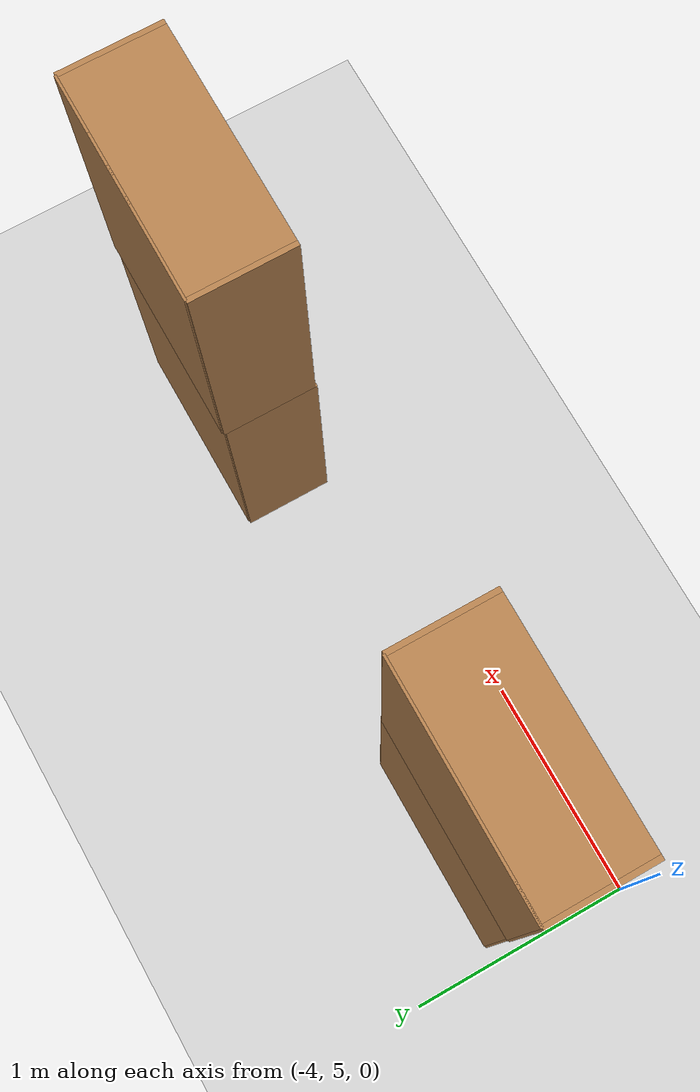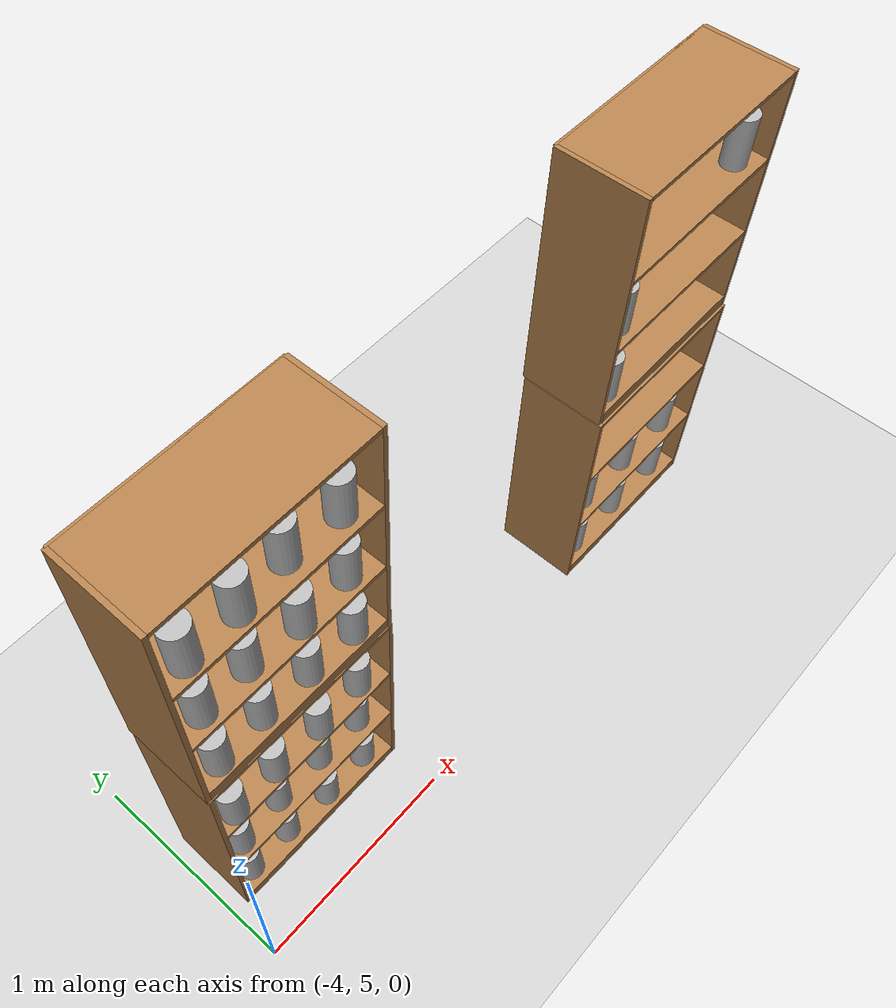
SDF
<sdf version="1.7">
 <world name="default">
  <model name="ground_plane">
   <static>1</static>
   <link name="link">
    <collision name="collision">
     <geometry><plane><normal>0 0 1</normal><size>100 100</size></plane></geometry>
     <surface><friction><ode><mu>100</mu><mu2>50</mu2></ode></friction></surface>
    </collision>
    <visual name="visual">
     <cast_shadows>0</cast_shadows>
     <geometry><plane><normal>0 0 1</normal><size>100 100</size></plane></geometry>
     <material>
      <script><uri>file://media/materials/scripts/gazebo.material</uri><name>Gazebo/Grey</name></script>
     </material>
    </visual>
   </link>
  </model>
  <model name="bookshelf_2_clone">
   <static>1</static>
   <link name="link">
    <inertial><mass>1</mass></inertial>
    <collision name="back">
     <pose>0 0.005 0.6 0 -0 0</pose>
     <geometry><box><size>0.9 0.01 1.2</size></box></geometry>
    </collision>
    <visual name="visual1">
     <pose>0 0.005 0.6 0 -0 0</pose>
     <geometry><box><size>0.9 0.01 1.2</size></box></geometry>
     <material>
      <script><uri>file://media/materials/scripts/gazebo.material</uri><name>Gazebo/Wood</name></script>
     </material>
    </visual>
    <collision name="left_side">
     <pose>0.45 -0.195 0.6 0 -0 0</pose>
     <geometry><box><size>0.02 0.4 1.2</size></box></geometry>
    </collision>
    <visual name="visual2">
     <pose>0.45 -0.195 0.6 0 -0 0</pose>
     <geometry><box><size>0.02 0.4 1.2</size></box></geometry>
     <material>
      <script><uri>file://media/materials/scripts/gazebo.material</uri><name>Gazebo/Wood</name></script>
     </material>
    </visual>
    <collision name="right_side">
     <pose>-0.45 -0.195 0.6 0 -0 0</pose>
     <geometry><box><size>0.02 0.4 1.2</size></box></geometry>
    </collision>
    <visual name="visual3">
     <pose>-0.45 -0.195 0.6 0 -0 0</pose>
     <geometry><box><size>0.02 0.4 1.2</size></box></geometry>
     <material>
      <script><uri>file://media/materials/scripts/gazebo.material</uri><name>Gazebo/Wood</name></script>
     </material>
    </visual>
    <collision name="bottom">
     <pose>0 -0.195 0.03 0 -0 0</pose>
     <geometry><box><size>0.88 0.4 0.06</size></box></geometry>
    </collision>
    <visual name="visual4">
     <pose>0 -0.195 0.03 0 -0 0</pose>
     <geometry><box><size>0.88 0.4 0.06</size></box></geometry>
     <material>
      <script><uri>file://media/materials/scripts/gazebo.material</uri><name>Gazebo/Wood</name></script>
     </material>
    </visual>
    <collision name="top">
     <pose>0 -0.195 1.19 0 -0 0</pose>
     <geometry><box><size>0.88 0.4 0.02</size></box></geometry>
    </collision>
    <visual name="visual5">
     <pose>0 -0.195 1.19 0 -0 0</pose>
     <geometry><box><size>0.88 0.4 0.02</size></box></geometry>
     <material>
      <script><uri>file://media/materials/scripts/gazebo.material</uri><name>Gazebo/Wood</name></script>
     </material>
    </visual>
    <collision name="low_shelf">
     <pose>0 -0.195 0.43 0 -0 0</pose>
     <geometry><box><size>0.88 0.4 0.02</size></box></geometry>
    </collision>
    <visual name="visual6">
     <pose>0 -0.195 0.43 0 -0 0</pose>
     <geometry><box><size>0.88 0.4 0.02</size></box></geometry>
     <material>
      <script><uri>file://media/materials/scripts/gazebo.material</uri><name>Gazebo/Wood</name></script>
     </material>
    </visual>
    <collision name="high_shelf">
     <pose>0 -0.195 0.8 0 -0 0</pose>
     <geometry><box><size>0.88 0.4 0.02</size></box></geometry>
    </collision>
    <visual name="visual7">
     <pose>0 -0.195 0.8 0 -0 0</pose>
     <geometry><box><size>0.88 0.4 0.02</size></box></geometry>
     <material>
      <script><uri>file://media/materials/scripts/gazebo.material</uri><name>Gazebo/Wood</name></script>
     </material>
    </visual>
   </link>
   <pose>-1.30264 5.59901 0 0 -0 0</pose>
  </model>
  <model name="bookshelf_2_clone_clone">
   <static>1</static>
   <link name="link">
    <inertial><mass>1</mass></inertial>
    <collision name="back">
     <pose>0 0.005 0.6 0 -0 0</pose>
     <geometry><box><size>0.9 0.01 1.2</size></box></geometry>
    </collision>
    <visual name="visual1">
     <pose>0 0.005 0.6 0 -0 0</pose>
     <geometry><box><size>0.9 0.01 1.2</size></box></geometry>
     <material>
      <script><uri>file://media/materials/scripts/gazebo.material</uri><name>Gazebo/Wood</name></script>
     </material>
    </visual>
    <collision name="left_side">
     <pose>0.45 -0.195 0.6 0 -0 0</pose>
     <geometry><box><size>0.02 0.4 1.2</size></box></geometry>
    </collision>
    <visual name="visual2">
     <pose>0.45 -0.195 0.6 0 -0 0</pose>
     <geometry><box><size>0.02 0.4 1.2</size></box></geometry>
     <material>
      <script><uri>file://media/materials/scripts/gazebo.material</uri><name>Gazebo/Wood</name></script>
     </material>
    </visual>
    <collision name="right_side">
     <pose>-0.45 -0.195 0.6 0 -0 0</pose>
     <geometry><box><size>0.02 0.4 1.2</size></box></geometry>
    </collision>
    <visual name="visual3">
     <pose>-0.45 -0.195 0.6 0 -0 0</pose>
     <geometry><box><size>0.02 0.4 1.2</size></box></geometry>
     <material>
      <script><uri>file://media/materials/scripts/gazebo.material</uri><name>Gazebo/Wood</name></script>
     </material>
    </visual>
    <collision name="bottom">
     <pose>0 -0.195 0.03 0 -0 0</pose>
     <geometry><box><size>0.88 0.4 0.06</size></box></geometry>
    </collision>
    <visual name="visual4">
     <pose>0 -0.195 0.03 0 -0 0</pose>
     <geometry><box><size>0.88 0.4 0.06</size></box></geometry>
     <material>
      <script><uri>file://media/materials/scripts/gazebo.material</uri><name>Gazebo/Wood</name></script>
     </material>
    </visual>
    <collision name="top">
     <pose>0 -0.195 1.19 0 -0 0</pose>
     <geometry><box><size>0.88 0.4 0.02</size></box></geometry>
    </collision>
    <visual name="visual5">
     <pose>0 -0.195 1.19 0 -0 0</pose>
     <geometry><box><size>0.88 0.4 0.02</size></box></geometry>
     <material>
      <script><uri>file://media/materials/scripts/gazebo.material</uri><name>Gazebo/Wood</name></script>
     </material>
    </visual>
    <collision name="low_shelf">
     <pose>0 -0.195 0.43 0 -0 0</pose>
     <geometry><box><size>0.88 0.4 0.02</size></box></geometry>
    </collision>
    <visual name="visual6">
     <pose>0 -0.195 0.43 0 -0 0</pose>
     <geometry><box><size>0.88 0.4 0.02</size></box></geometry>
     <material>
      <script><uri>file://media/materials/scripts/gazebo.material</uri><name>Gazebo/Wood</name></script>
     </material>
    </visual>
    <collision name="high_shelf">
     <pose>0 -0.195 0.8 0 -0 0</pose>
     <geometry><box><size>0.88 0.4 0.02</size></box></geometry>
    </collision>
    <visual name="visual7">
     <pose>0 -0.195 0.8 0 -0 0</pose>
     <geometry><box><size>0.88 0.4 0.02</size></box></geometry>
     <material>
      <script><uri>file://media/materials/scripts/gazebo.material</uri><name>Gazebo/Wood</name></script>
     </material>
    </visual>
   </link>
   <pose>-3.46853 5.62428 0 0 -0 0</pose>
  </model>
  <model name="bookshelf_3_clone">
   <static>1</static>
   <link name="link">
    <inertial><mass>1</mass></inertial>
    <collision name="back">
     <pose>0 0.005 0.6 0 -0 0</pose>
     <geometry><box><size>0.9 0.01 1.2</size></box></geometry>
    </collision>
    <visual name="visual1">
     <pose>0 0.005 0.6 0 -0 0</pose>
     <geometry><box><size>0.9 0.01 1.2</size></box></geometry>
     <material>
      <script><uri>file://media/materials/scripts/gazebo.material</uri><name>Gazebo/Wood</name></script>
     </material>
    </visual>
    <collision name="left_side">
     <pose>0.45 -0.195 0.6 0 -0 0</pose>
     <geometry><box><size>0.02 0.4 1.2</size></box></geometry>
    </collision>
    <visual name="visual2">
     <pose>0.45 -0.195 0.6 0 -0 0</pose>
     <geometry><box><size>0.02 0.4 1.2</size></box></geometry>
     <material>
      <script><uri>file://media/materials/scripts/gazebo.material</uri><name>Gazebo/Wood</name></script>
     </material>
    </visual>
    <collision name="right_side">
     <pose>-0.45 -0.195 0.6 0 -0 0</pose>
     <geometry><box><size>0.02 0.4 1.2</size></box></geometry>
    </collision>
    <visual name="visual3">
     <pose>-0.45 -0.195 0.6 0 -0 0</pose>
     <geometry><box><size>0.02 0.4 1.2</size></box></geometry>
     <material>
      <script><uri>file://media/materials/scripts/gazebo.material</uri><name>Gazebo/Wood</name></script>
     </material>
    </visual>
    <collision name="bottom">
     <pose>0 -0.195 0.03 0 -0 0</pose>
     <geometry><box><size>0.88 0.4 0.06</size></box></geometry>
    </collision>
    <visual name="visual4">
     <pose>0 -0.195 0.03 0 -0 0</pose>
     <geometry><box><size>0.88 0.4 0.06</size></box></geometry>
     <material>
      <script><uri>file://media/materials/scripts/gazebo.material</uri><name>Gazebo/Wood</name></script>
     </material>
    </visual>
    <collision name="top">
     <pose>0 -0.195 1.19 0 -0 0</pose>
     <geometry><box><size>0.88 0.4 0.02</size></box></geometry>
    </collision>
    <visual name="visual5">
     <pose>0 -0.195 1.19 0 -0 0</pose>
     <geometry><box><size>0.88 0.4 0.02</size></box></geometry>
     <material>
      <script><uri>file://media/materials/scripts/gazebo.material</uri><name>Gazebo/Wood</name></script>
     </material>
    </visual>
    <collision name="low_shelf">
     <pose>0 -0.195 0.43 0 -0 0</pose>
     <geometry><box><size>0.88 0.4 0.02</size></box></geometry>
    </collision>
    <visual name="visual6">
     <pose>0 -0.195 0.43 0 -0 0</pose>
     <geometry><box><size>0.88 0.4 0.02</size></box></geometry>
     <material>
      <script><uri>file://media/materials/scripts/gazebo.material</uri><name>Gazebo/Wood</name></script>
     </material>
    </visual>
    <collision name="high_shelf">
     <pose>0 -0.195 0.8 0 -0 0</pose>
     <geometry><box><size>0.88 0.4 0.02</size></box></geometry>
    </collision>
    <visual name="visual7">
     <pose>0 -0.195 0.8 0 -0 0</pose>
     <geometry><box><size>0.88 0.4 0.02</size></box></geometry>
     <material>
      <script><uri>file://media/materials/scripts/gazebo.material</uri><name>Gazebo/Wood</name></script>
     </material>
    </visual>
   </link>
   <pose>-1.30336 5.6079 1.20481 0 -0 0</pose>
  </model>
  <model name="bookshelf_3_clone_clone">
   <static>1</static>
   <link name="link">
    <inertial><mass>1</mass></inertial>
    <collision name="back">
     <pose>0 0.005 0.6 0 -0 0</pose>
     <geometry><box><size>0.9 0.01 1.2</size></box></geometry>
    </collision>
    <visual name="visual1">
     <pose>0 0.005 0.6 0 -0 0</pose>
     <geometry><box><size>0.9 0.01 1.2</size></box></geometry>
     <material>
      <script><uri>file://media/materials/scripts/gazebo.material</uri><name>Gazebo/Wood</name></script>
     </material>
    </visual>
    <collision name="left_side">
     <pose>0.45 -0.195 0.6 0 -0 0</pose>
     <geometry><box><size>0.02 0.4 1.2</size></box></geometry>
    </collision>
    <visual name="visual2">
     <pose>0.45 -0.195 0.6 0 -0 0</pose>
     <geometry><box><size>0.02 0.4 1.2</size></box></geometry>
     <material>
      <script><uri>file://media/materials/scripts/gazebo.material</uri><name>Gazebo/Wood</name></script>
     </material>
    </visual>
    <collision name="right_side">
     <pose>-0.45 -0.195 0.6 0 -0 0</pose>
     <geometry><box><size>0.02 0.4 1.2</size></box></geometry>
    </collision>
    <visual name="visual3">
     <pose>-0.45 -0.195 0.6 0 -0 0</pose>
     <geometry><box><size>0.02 0.4 1.2</size></box></geometry>
     <material>
      <script><uri>file://media/materials/scripts/gazebo.material</uri><name>Gazebo/Wood</name></script>
     </material>
    </visual>
    <collision name="bottom">
     <pose>0 -0.195 0.03 0 -0 0</pose>
     <geometry><box><size>0.88 0.4 0.06</size></box></geometry>
    </collision>
    <visual name="visual4">
     <pose>0 -0.195 0.03 0 -0 0</pose>
     <geometry><box><size>0.88 0.4 0.06</size></box></geometry>
     <material>
      <script><uri>file://media/materials/scripts/gazebo.material</uri><name>Gazebo/Wood</name></script>
     </material>
    </visual>
    <collision name="top">
     <pose>0 -0.195 1.19 0 -0 0</pose>
     <geometry><box><size>0.88 0.4 0.02</size></box></geometry>
    </collision>
    <visual name="visual5">
     <pose>0 -0.195 1.19 0 -0 0</pose>
     <geometry><box><size>0.88 0.4 0.02</size></box></geometry>
     <material>
      <script><uri>file://media/materials/scripts/gazebo.material</uri><name>Gazebo/Wood</name></script>
     </material>
    </visual>
    <collision name="low_shelf">
     <pose>0 -0.195 0.43 0 -0 0</pose>
     <geometry><box><size>0.88 0.4 0.02</size></box></geometry>
    </collision>
    <visual name="visual6">
     <pose>0 -0.195 0.43 0 -0 0</pose>
     <geometry><box><size>0.88 0.4 0.02</size></box></geometry>
     <material>
      <script><uri>file://media/materials/scripts/gazebo.material</uri><name>Gazebo/Wood</name></script>
     </material>
    </visual>
    <collision name="high_shelf">
     <pose>0 -0.195 0.8 0 -0 0</pose>
     <geometry><box><size>0.88 0.4 0.02</size></box></geometry>
    </collision>
    <visual name="visual7">
     <pose>0 -0.195 0.8 0 -0 0</pose>
     <geometry><box><size>0.88 0.4 0.02</size></box></geometry>
     <material>
      <script><uri>file://media/materials/scripts/gazebo.material</uri><name>Gazebo/Wood</name></script>
     </material>
    </visual>
   </link>
   <pose>-3.47373 5.62521 1.20481 0 -0 0</pose>
  </model>
  <model name="beer">
   <link name="link">
    <pose>0 0 0.115 0 -0 0</pose>
    <inertial>
     <mass>0.39</mass>
     <inertia><ixx>0.00058</ixx><ixy>0</ixy><ixz>0</ixz><iyy>0.00058</iyy><iyz>0</iyz><izz>0.00019</izz></inertia>
    </inertial>
    <collision name="collision">
     <geometry><cylinder><radius>0.055</radius><length>0.23</length></cylinder></geometry>
    </collision>
    <visual name="visual">
     <geometry><cylinder><radius>0.055</radius><length>0.23</length></cylinder></geometry>
     <material>
      <script>
       <uri>model://beer/materials/scripts</uri>
       <uri>model://beer/materials/textures</uri>
       <name>Beer/Diffuse</name>
      </script>
     </material>
    </visual>
   </link>
   <pose>-3.82313 5.3078 0.05999 1e-06 -2.7e-05 0.024904</pose>
  </model>
  <model name="beer_0">
   <link name="link">
    <pose>0 0 0.115 0 -0 0</pose>
    <inertial>
     <mass>0.39</mass>
     <inertia><ixx>0.00058</ixx><ixy>0</ixy><ixz>0</ixz><iyy>0.00058</iyy><iyz>0</iyz><izz>0.00019</izz></inertia>
    </inertial>
    <collision name="collision">
     <geometry><cylinder><radius>0.055</radius><length>0.23</length></cylinder></geometry>
    </collision>
    <visual name="visual">
     <geometry><cylinder><radius>0.055</radius><length>0.23</length></cylinder></geometry>
     <material>
      <script>
       <uri>model://beer/materials/scripts</uri>
       <uri>model://beer/materials/textures</uri>
       <name>Beer/Diffuse</name>
      </script>
     </material>
    </visual>
   </link>
   <pose>-3.60607 5.31032 0.059992 -1e-06 2.7e-05 0.046246</pose>
  </model>
  <model name="beer_1">
   <link name="link">
    <pose>0 0 0.115 0 -0 0</pose>
    <inertial>
     <mass>0.39</mass>
     <inertia><ixx>0.00058</ixx><ixy>0</ixy><ixz>0</ixz><iyy>0.00058</iyy><iyz>0</iyz><izz>0.00019</izz></inertia>
    </inertial>
    <collision name="collision">
     <geometry><cylinder><radius>0.055</radius><length>0.23</length></cylinder></geometry>
    </collision>
    <visual name="visual">
     <geometry><cylinder><radius>0.055</radius><length>0.23</length></cylinder></geometry>
     <material>
      <script>
       <uri>model://beer/materials/scripts</uri>
       <uri>model://beer/materials/textures</uri>
       <name>Beer/Diffuse</name>
      </script>
     </material>
    </visual>
   </link>
   <pose>-3.37516 5.2992 0.05999 -1e-06 2.6e-05 0.020777</pose>
  </model>
  <model name="beer_2">
   <link name="link">
    <pose>0 0 0.115 0 -0 0</pose>
    <inertial>
     <mass>0.39</mass>
     <inertia><ixx>0.00058</ixx><ixy>0</ixy><ixz>0</ixz><iyy>0.00058</iyy><iyz>0</iyz><izz>0.00019</izz></inertia>
    </inertial>
    <collision name="collision">
     <geometry><cylinder><radius>0.055</radius><length>0.23</length></cylinder></geometry>
    </collision>
    <visual name="visual">
     <geometry><cylinder><radius>0.055</radius><length>0.23</length></cylinder></geometry>
     <material>
      <script>
       <uri>model://beer/materials/scripts</uri>
       <uri>model://beer/materials/textures</uri>
       <name>Beer/Diffuse</name>
      </script>
     </material>
    </visual>
   </link>
   <pose>-3.14441 5.30303 0.059989 -2.1e-05 -1e-06 0.004999</pose>
  </model>
  <model name="beer_3_clone">
   <link name="link">
    <pose>0 0 0.115 0 -0 0</pose>
    <inertial>
     <mass>0.39</mass>
     <inertia><ixx>0.00058</ixx><ixy>0</ixy><ixz>0</ixz><iyy>0.00058</iyy><iyz>0</iyz><izz>0.00019</izz></inertia>
    </inertial>
    <collision name="collision">
     <geometry><cylinder><radius>0.055</radius><length>0.23</length></cylinder></geometry>
    </collision>
    <visual name="visual">
     <geometry><cylinder><radius>0.055</radius><length>0.23</length></cylinder></geometry>
     <material>
      <script>
       <uri>model://beer/materials/scripts</uri>
       <uri>model://beer/materials/textures</uri>
       <name>Beer/Diffuse</name>
      </script>
     </material>
    </visual>
   </link>
   <pose>-3.60909 5.31388 0.439992 2.6e-05 2.2e-05 0.038692</pose>
  </model>
  <model name="beer_3_clone_0">
   <link name="link">
    <pose>0 0 0.115 0 -0 0</pose>
    <inertial>
     <mass>0.39</mass>
     <inertia><ixx>0.00058</ixx><ixy>0</ixy><ixz>0</ixz><iyy>0.00058</iyy><iyz>0</iyz><izz>0.00019</izz></inertia>
    </inertial>
    <collision name="collision">
     <geometry><cylinder><radius>0.055</radius><length>0.23</length></cylinder></geometry>
    </collision>
    <visual name="visual">
     <geometry><cylinder><radius>0.055</radius><length>0.23</length></cylinder></geometry>
     <material>
      <script>
       <uri>model://beer/materials/scripts</uri>
       <uri>model://beer/materials/textures</uri>
       <name>Beer/Diffuse</name>
      </script>
     </material>
    </visual>
   </link>
   <pose>-3.37384 5.31586 0.439992 2.4e-05 1.4e-05 0.022599</pose>
  </model>
  <model name="beer_3_clone_1">
   <link name="link">
    <pose>0 0 0.115 0 -0 0</pose>
    <inertial>
     <mass>0.39</mass>
     <inertia><ixx>0.00058</ixx><ixy>0</ixy><ixz>0</ixz><iyy>0.00058</iyy><iyz>0</iyz><izz>0.00019</izz></inertia>
    </inertial>
    <collision name="collision">
     <geometry><cylinder><radius>0.055</radius><length>0.23</length></cylinder></geometry>
    </collision>
    <visual name="visual">
     <geometry><cylinder><radius>0.055</radius><length>0.23</length></cylinder></geometry>
     <material>
      <script>
       <uri>model://beer/materials/scripts</uri>
       <uri>model://beer/materials/textures</uri>
       <name>Beer/Diffuse</name>
      </script>
     </material>
    </visual>
   </link>
   <pose>-3.14994 5.31582 0.440001 1.7e-05 -1.5e-05 0.008951</pose>
  </model>
  <model name="beer_1_clone">
   <link name="link">
    <pose>0 0 0.115 0 -0 0</pose>
    <inertial>
     <mass>0.39</mass>
     <inertia><ixx>0.00058</ixx><ixy>0</ixy><ixz>0</ixz><iyy>0.00058</iyy><iyz>0</iyz><izz>0.00019</izz></inertia>
    </inertial>
    <collision name="collision">
     <geometry><cylinder><radius>0.055</radius><length>0.23</length></cylinder></geometry>
    </collision>
    <visual name="visual">
     <geometry><cylinder><radius>0.055</radius><length>0.23</length></cylinder></geometry>
     <material>
      <script>
       <uri>model://beer/materials/scripts</uri>
       <uri>model://beer/materials/textures</uri>
       <name>Beer/Diffuse</name>
      </script>
     </material>
    </visual>
   </link>
   <pose>-1.63126 5.28748 0.05999 -1e-06 2.6e-05 0.018521</pose>
  </model>
  <model name="beer_1_clone_0">
   <link name="link">
    <pose>0 0 0.115 0 -0 0</pose>
    <inertial>
     <mass>0.39</mass>
     <inertia><ixx>0.00058</ixx><ixy>0</ixy><ixz>0</ixz><iyy>0.00058</iyy><iyz>0</iyz><izz>0.00019</izz></inertia>
    </inertial>
    <collision name="collision">
     <geometry><cylinder><radius>0.055</radius><length>0.23</length></cylinder></geometry>
    </collision>
    <visual name="visual">
     <geometry><cylinder><radius>0.055</radius><length>0.23</length></cylinder></geometry>
     <material>
      <script>
       <uri>model://beer/materials/scripts</uri>
       <uri>model://beer/materials/textures</uri>
       <name>Beer/Diffuse</name>
      </script>
     </material>
    </visual>
   </link>
   <pose>-1.3203 5.28927 0.059989 3e-06 -2.8e-05 0.020494</pose>
  </model>
  <model name="beer_1_clone_1">
   <link name="link">
    <pose>0 0 0.115 0 -0 0</pose>
    <inertial>
     <mass>0.39</mass>
     <inertia><ixx>0.00058</ixx><ixy>0</ixy><ixz>0</ixz><iyy>0.00058</iyy><iyz>0</iyz><izz>0.00019</izz></inertia>
    </inertial>
    <collision name="collision">
     <geometry><cylinder><radius>0.055</radius><length>0.23</length></cylinder></geometry>
    </collision>
    <visual name="visual">
     <geometry><cylinder><radius>0.055</radius><length>0.23</length></cylinder></geometry>
     <material>
      <script>
       <uri>model://beer/materials/scripts</uri>
       <uri>model://beer/materials/textures</uri>
       <name>Beer/Diffuse</name>
      </script>
     </material>
    </visual>
   </link>
   <pose>-0.999917 5.28641 0.060002 2.3e-05 1.5e-05 0.00783</pose>
  </model>
  <model name="beer_3_clone_1_clone">
   <link name="link">
    <pose>0 0 0.115 0 -0 0</pose>
    <inertial>
     <mass>0.39</mass>
     <inertia><ixx>0.00058</ixx><ixy>0</ixy><ixz>0</ixz><iyy>0.00058</iyy><iyz>0</iyz><izz>0.00019</izz></inertia>
    </inertial>
    <collision name="collision">
     <geometry><cylinder><radius>0.055</radius><length>0.23</length></cylinder></geometry>
    </collision>
    <visual name="visual">
     <geometry><cylinder><radius>0.055</radius><length>0.23</length></cylinder></geometry>
     <material>
      <script>
       <uri>model://beer/materials/scripts</uri>
       <uri>model://beer/materials/textures</uri>
       <name>Beer/Diffuse</name>
      </script>
     </material>
    </visual>
   </link>
   <pose>-1.6251 5.29266 0.43999 -1e-06 2.6e-05 0.019975</pose>
  </model>
  <model name="beer_3_clone_1_clone_0">
   <link name="link">
    <pose>0 0 0.115 0 -0 0</pose>
    <inertial>
     <mass>0.39</mass>
     <inertia><ixx>0.00058</ixx><ixy>0</ixy><ixz>0</ixz><iyy>0.00058</iyy><iyz>0</iyz><izz>0.00019</izz></inertia>
    </inertial>
    <collision name="collision">
     <geometry><cylinder><radius>0.055</radius><length>0.23</length></cylinder></geometry>
    </collision>
    <visual name="visual">
     <geometry><cylinder><radius>0.055</radius><length>0.23</length></cylinder></geometry>
     <material>
      <script>
       <uri>model://beer/materials/scripts</uri>
       <uri>model://beer/materials/textures</uri>
       <name>Beer/Diffuse</name>
      </script>
     </material>
    </visual>
   </link>
   <pose>-1.32664 5.29025 0.43999 -1e-06 2.6e-05 0.024543</pose>
  </model>
  <model name="beer_3_clone_1_clone_1">
   <link name="link">
    <pose>0 0 0.115 0 -0 0</pose>
    <inertial>
     <mass>0.39</mass>
     <inertia><ixx>0.00058</ixx><ixy>0</ixy><ixz>0</ixz><iyy>0.00058</iyy><iyz>0</iyz><izz>0.00019</izz></inertia>
    </inertial>
    <collision name="collision">
     <geometry><cylinder><radius>0.055</radius><length>0.23</length></cylinder></geometry>
    </collision>
    <visual name="visual">
     <geometry><cylinder><radius>0.055</radius><length>0.23</length></cylinder></geometry>
     <material>
      <script>
       <uri>model://beer/materials/scripts</uri>
       <uri>model://beer/materials/textures</uri>
       <name>Beer/Diffuse</name>
      </script>
     </material>
    </visual>
   </link>
   <pose>-1.01331 5.28781 0.440001 1.8e-05 -1.4e-05 0.001542</pose>
  </model>
  <model name="beer_3_clone_clone_0">
   <link name="link">
    <pose>0 0 0.115 0 -0 0</pose>
    <inertial>
     <mass>0.39</mass>
     <inertia><ixx>0.00058</ixx><ixy>0</ixy><ixz>0</ixz><iyy>0.00058</iyy><iyz>0</iyz><izz>0.00019</izz></inertia>
    </inertial>
    <collision name="collision">
     <geometry><cylinder><radius>0.055</radius><length>0.23</length></cylinder></geometry>
    </collision>
    <visual name="visual">
     <geometry><cylinder><radius>0.055</radius><length>0.23</length></cylinder></geometry>
     <material>
      <script>
       <uri>model://beer/materials/scripts</uri>
       <uri>model://beer/materials/textures</uri>
       <name>Beer/Diffuse</name>
      </script>
     </material>
    </visual>
   </link>
   <pose>-3.83051 5.29896 0.439991 4e-06 1.4e-05 0.034563</pose>
  </model>
  <model name="beer_3_clone_clone_clone">
   <link name="link">
    <pose>0 0 0.115 0 -0 0</pose>
    <inertial>
     <mass>0.39</mass>
     <inertia><ixx>0.00058</ixx><ixy>0</ixy><ixz>0</ixz><iyy>0.00058</iyy><iyz>0</iyz><izz>0.00019</izz></inertia>
    </inertial>
    <collision name="collision">
     <geometry><cylinder><radius>0.055</radius><length>0.23</length></cylinder></geometry>
    </collision>
    <visual name="visual">
     <geometry><cylinder><radius>0.055</radius><length>0.23</length></cylinder></geometry>
     <material>
      <script>
       <uri>model://beer/materials/scripts</uri>
       <uri>model://beer/materials/textures</uri>
       <name>Beer/Diffuse</name>
      </script>
     </material>
    </visual>
   </link>
   <pose>-3.60909 5.2856 0.810002 3.4e-05 -4e-06 0.023573</pose>
  </model>
  <model name="beer_3_clone_clone_clone_clone">
   <link name="link">
    <pose>0 0 0.115 0 -0 0</pose>
    <inertial>
     <mass>0.39</mass>
     <inertia><ixx>0.00058</ixx><ixy>0</ixy><ixz>0</ixz><iyy>0.00058</iyy><iyz>0</iyz><izz>0.00019</izz></inertia>
    </inertial>
    <collision name="collision">
     <geometry><cylinder><radius>0.055</radius><length>0.23</length></cylinder></geometry>
    </collision>
    <visual name="visual">
     <geometry><cylinder><radius>0.055</radius><length>0.23</length></cylinder></geometry>
     <material>
      <script>
       <uri>model://beer/materials/scripts</uri>
       <uri>model://beer/materials/textures</uri>
       <name>Beer/Diffuse</name>
      </script>
     </material>
    </visual>
   </link>
   <pose>-3.37633 5.28046 0.810001 -2e-06 2.7e-05 0.022168</pose>
  </model>
  <model name="beer_3_clone_clone_clone_clone_0">
   <link name="link">
    <pose>0 0 0.115 0 -0 0</pose>
    <inertial>
     <mass>0.39</mass>
     <inertia><ixx>0.00058</ixx><ixy>0</ixy><ixz>0</ixz><iyy>0.00058</iyy><iyz>0</iyz><izz>0.00019</izz></inertia>
    </inertial>
    <collision name="collision">
     <geometry><cylinder><radius>0.055</radius><length>0.23</length></cylinder></geometry>
    </collision>
    <visual name="visual">
     <geometry><cylinder><radius>0.055</radius><length>0.23</length></cylinder></geometry>
     <material>
      <script>
       <uri>model://beer/materials/scripts</uri>
       <uri>model://beer/materials/textures</uri>
       <name>Beer/Diffuse</name>
      </script>
     </material>
    </visual>
   </link>
   <pose>-3.14841 5.29379 0.810001 2.4e-05 2e-06 0.022506</pose>
  </model>
  <model name="beer_3_clone_clone_clone_clone_2">
   <link name="link">
    <pose>0 0 0.115 0 -0 0</pose>
    <inertial>
     <mass>0.39</mass>
     <inertia><ixx>0.00058</ixx><ixy>0</ixy><ixz>0</ixz><iyy>0.00058</iyy><iyz>0</iyz><izz>0.00019</izz></inertia>
    </inertial>
    <collision name="collision">
     <geometry><cylinder><radius>0.055</radius><length>0.23</length></cylinder></geometry>
    </collision>
    <visual name="visual">
     <geometry><cylinder><radius>0.055</radius><length>0.23</length></cylinder></geometry>
     <material>
      <script>
       <uri>model://beer/materials/scripts</uri>
       <uri>model://beer/materials/textures</uri>
       <name>Beer/Diffuse</name>
      </script>
     </material>
    </visual>
   </link>
   <pose>-3.82307 5.28071 0.809991 3e-06 7e-06 0.022574</pose>
  </model>
  <model name="beer_3_clone_clone_clone_clone_1_clone">
   <link name="link">
    <pose>0 0 0.115 0 -0 0</pose>
    <inertial>
     <mass>0.39</mass>
     <inertia><ixx>0.00058</ixx><ixy>0</ixy><ixz>0</ixz><iyy>0.00058</iyy><iyz>0</iyz><izz>0.00019</izz></inertia>
    </inertial>
    <collision name="collision">
     <geometry><cylinder><radius>0.055</radius><length>0.23</length></cylinder></geometry>
    </collision>
    <visual name="visual">
     <geometry><cylinder><radius>0.055</radius><length>0.23</length></cylinder></geometry>
     <material>
      <script>
       <uri>model://beer/materials/scripts</uri>
       <uri>model://beer/materials/textures</uri>
       <name>Beer/Diffuse</name>
      </script>
     </material>
    </visual>
   </link>
   <pose>-3.60033 5.29996 1.26481 0 -0 0.026183</pose>
  </model>
  <model name="beer_3_clone_clone_clone_clone_1_clone_0">
   <link name="link">
    <pose>0 0 0.115 0 -0 0</pose>
    <inertial>
     <mass>0.39</mass>
     <inertia><ixx>0.00058</ixx><ixy>0</ixy><ixz>0</ixz><iyy>0.00058</iyy><iyz>0</iyz><izz>0.00019</izz></inertia>
    </inertial>
    <collision name="collision">
     <geometry><cylinder><radius>0.055</radius><length>0.23</length></cylinder></geometry>
    </collision>
    <visual name="visual">
     <geometry><cylinder><radius>0.055</radius><length>0.23</length></cylinder></geometry>
     <material>
      <script>
       <uri>model://beer/materials/scripts</uri>
       <uri>model://beer/materials/textures</uri>
       <name>Beer/Diffuse</name>
      </script>
     </material>
    </visual>
   </link>
   <pose>-3.37657 5.29465 1.26481 -1e-06 2.6e-05 0.023773</pose>
  </model>
  <model name="beer_3_clone_clone_clone_clone_1_clone_1">
   <link name="link">
    <pose>0 0 0.115 0 -0 0</pose>
    <inertial>
     <mass>0.39</mass>
     <inertia><ixx>0.00058</ixx><ixy>0</ixy><ixz>0</ixz><iyy>0.00058</iyy><iyz>0</iyz><izz>0.00019</izz></inertia>
    </inertial>
    <collision name="collision">
     <geometry><cylinder><radius>0.055</radius><length>0.23</length></cylinder></geometry>
    </collision>
    <visual name="visual">
     <geometry><cylinder><radius>0.055</radius><length>0.23</length></cylinder></geometry>
     <material>
      <script>
       <uri>model://beer/materials/scripts</uri>
       <uri>model://beer/materials/textures</uri>
       <name>Beer/Diffuse</name>
      </script>
     </material>
    </visual>
   </link>
   <pose>-3.15278 5.28933 1.2648 1.3e-05 -1.7e-05 0.023034</pose>
  </model>
  <model name="beer_3_clone_clone_clone_clone_1_clone_clone">
   <link name="link">
    <pose>0 0 0.115 0 -0 0</pose>
    <inertial>
     <mass>0.39</mass>
     <inertia><ixx>0.00058</ixx><ixy>0</ixy><ixz>0</ixz><iyy>0.00058</iyy><iyz>0</iyz><izz>0.00019</izz></inertia>
    </inertial>
    <collision name="collision">
     <geometry><cylinder><radius>0.055</radius><length>0.23</length></cylinder></geometry>
    </collision>
    <visual name="visual">
     <geometry><cylinder><radius>0.055</radius><length>0.23</length></cylinder></geometry>
     <material>
      <script>
       <uri>model://beer/materials/scripts</uri>
       <uri>model://beer/materials/textures</uri>
       <name>Beer/Diffuse</name>
      </script>
     </material>
    </visual>
   </link>
   <pose>-3.81521 5.29073 1.2648 -1e-06 2.6e-05 0.024144</pose>
  </model>
  <model name="beer_3_clone_clone_clone_clone_1_clone_2">
   <link name="link">
    <pose>0 0 0.115 0 -0 0</pose>
    <inertial>
     <mass>0.39</mass>
     <inertia><ixx>0.00058</ixx><ixy>0</ixy><ixz>0</ixz><iyy>0.00058</iyy><iyz>0</iyz><izz>0.00019</izz></inertia>
    </inertial>
    <collision name="collision">
     <geometry><cylinder><radius>0.055</radius><length>0.23</length></cylinder></geometry>
    </collision>
    <visual name="visual">
     <geometry><cylinder><radius>0.055</radius><length>0.23</length></cylinder></geometry>
     <material>
      <script>
       <uri>model://beer/materials/scripts</uri>
       <uri>model://beer/materials/textures</uri>
       <name>Beer/Diffuse</name>
      </script>
     </material>
    </visual>
   </link>
   <pose>-3.60662 5.30798 1.64481 4e-06 2.2e-05 0.02594</pose>
  </model>
  <model name="beer_3_clone_clone_clone_clone_1_clone_3">
   <link name="link">
    <pose>0 0 0.115 0 -0 0</pose>
    <inertial>
     <mass>0.39</mass>
     <inertia><ixx>0.00058</ixx><ixy>0</ixy><ixz>0</ixz><iyy>0.00058</iyy><iyz>0</iyz><izz>0.00019</izz></inertia>
    </inertial>
    <collision name="collision">
     <geometry><cylinder><radius>0.055</radius><length>0.23</length></cylinder></geometry>
    </collision>
    <visual name="visual">
     <geometry><cylinder><radius>0.055</radius><length>0.23</length></cylinder></geometry>
     <material>
      <script>
       <uri>model://beer/materials/scripts</uri>
       <uri>model://beer/materials/textures</uri>
       <name>Beer/Diffuse</name>
      </script>
     </material>
    </visual>
   </link>
   <pose>-3.3843 5.28832 1.64481 1e-06 -2.7e-05 0.024213</pose>
  </model>
  <model name="beer_3_clone_clone_clone_clone_1_clone_4">
   <link name="link">
    <pose>0 0 0.115 0 -0 0</pose>
    <inertial>
     <mass>0.39</mass>
     <inertia><ixx>0.00058</ixx><ixy>0</ixy><ixz>0</ixz><iyy>0.00058</iyy><iyz>0</iyz><izz>0.00019</izz></inertia>
    </inertial>
    <collision name="collision">
     <geometry><cylinder><radius>0.055</radius><length>0.23</length></cylinder></geometry>
    </collision>
    <visual name="visual">
     <geometry><cylinder><radius>0.055</radius><length>0.23</length></cylinder></geometry>
     <material>
      <script>
       <uri>model://beer/materials/scripts</uri>
       <uri>model://beer/materials/textures</uri>
       <name>Beer/Diffuse</name>
      </script>
     </material>
    </visual>
   </link>
   <pose>-3.15373 5.30189 1.64481 2.2e-05 1.8e-05 0.02327</pose>
  </model>
  <model name="beer_3_clone_clone_clone_clone_1_clone_2_clone_0">
   <link name="link">
    <pose>0 0 0.115 0 -0 0</pose>
    <inertial>
     <mass>0.39</mass>
     <inertia><ixx>0.00058</ixx><ixy>0</ixy><ixz>0</ixz><iyy>0.00058</iyy><iyz>0</iyz><izz>0.00019</izz></inertia>
    </inertial>
    <collision name="collision">
     <geometry><cylinder><radius>0.055</radius><length>0.23</length></cylinder></geometry>
    </collision>
    <visual name="visual">
     <geometry><cylinder><radius>0.055</radius><length>0.23</length></cylinder></geometry>
     <material>
      <script>
       <uri>model://beer/materials/scripts</uri>
       <uri>model://beer/materials/textures</uri>
       <name>Beer/Diffuse</name>
      </script>
     </material>
    </visual>
   </link>
   <pose>-3.8119 5.30249 1.6448 1e-06 -2.7e-05 0.024409</pose>
  </model>
  <model name="beer_3_clone_clone_clone_clone_1_clone_2_clone_clone">
   <link name="link">
    <pose>0 0 0.115 0 -0 0</pose>
    <inertial>
     <mass>0.39</mass>
     <inertia><ixx>0.00058</ixx><ixy>0</ixy><ixz>0</ixz><iyy>0.00058</iyy><iyz>0</iyz><izz>0.00019</izz></inertia>
    </inertial>
    <collision name="collision">
     <geometry><cylinder><radius>0.055</radius><length>0.23</length></cylinder></geometry>
    </collision>
    <visual name="visual">
     <geometry><cylinder><radius>0.055</radius><length>0.23</length></cylinder></geometry>
     <material>
      <script>
       <uri>model://beer/materials/scripts</uri>
       <uri>model://beer/materials/textures</uri>
       <name>Beer/Diffuse</name>
      </script>
     </material>
    </visual>
   </link>
   <pose>-3.59661 5.29676 2.01481 1.9e-05 -1.8e-05 0.025164</pose>
  </model>
  <model name="beer_3_clone_clone_clone_clone_1_clone_2_clone_clone_clone">
   <link name="link">
    <pose>0 0 0.115 0 -0 0</pose>
    <inertial>
     <mass>0.39</mass>
     <inertia><ixx>0.00058</ixx><ixy>0</ixy><ixz>0</ixz><iyy>0.00058</iyy><iyz>0</iyz><izz>0.00019</izz></inertia>
    </inertial>
    <collision name="collision">
     <geometry><cylinder><radius>0.055</radius><length>0.23</length></cylinder></geometry>
    </collision>
    <visual name="visual">
     <geometry><cylinder><radius>0.055</radius><length>0.23</length></cylinder></geometry>
     <material>
      <script>
       <uri>model://beer/materials/scripts</uri>
       <uri>model://beer/materials/textures</uri>
       <name>Beer/Diffuse</name>
      </script>
     </material>
    </visual>
   </link>
   <pose>-3.80992 5.29259 2.0148 -1e-06 2.6e-05 0.024652</pose>
  </model>
  <model name="beer_3_clone_clone_clone_clone_1_clone_2_clone_clone_clone_0">
   <link name="link">
    <pose>0 0 0.115 0 -0 0</pose>
    <inertial>
     <mass>0.39</mass>
     <inertia><ixx>0.00058</ixx><ixy>0</ixy><ixz>0</ixz><iyy>0.00058</iyy><iyz>0</iyz><izz>0.00019</izz></inertia>
    </inertial>
    <collision name="collision">
     <geometry><cylinder><radius>0.055</radius><length>0.23</length></cylinder></geometry>
    </collision>
    <visual name="visual">
     <geometry><cylinder><radius>0.055</radius><length>0.23</length></cylinder></geometry>
     <material>
      <script>
       <uri>model://beer/materials/scripts</uri>
       <uri>model://beer/materials/textures</uri>
       <name>Beer/Diffuse</name>
      </script>
     </material>
    </visual>
   </link>
   <pose>-3.38117 5.32163 2.0148 -1e-06 2.6e-05 0.025206</pose>
  </model>
  <model name="beer_3_clone_clone_clone_clone_1_clone_2_clone_clone_clone_1">
   <link name="link">
    <pose>0 0 0.115 0 -0 0</pose>
    <inertial>
     <mass>0.39</mass>
     <inertia><ixx>0.00058</ixx><ixy>0</ixy><ixz>0</ixz><iyy>0.00058</iyy><iyz>0</iyz><izz>0.00019</izz></inertia>
    </inertial>
    <collision name="collision">
     <geometry><cylinder><radius>0.055</radius><length>0.23</length></cylinder></geometry>
    </collision>
    <visual name="visual">
     <geometry><cylinder><radius>0.055</radius><length>0.23</length></cylinder></geometry>
     <material>
      <script>
       <uri>model://beer/materials/scripts</uri>
       <uri>model://beer/materials/textures</uri>
       <name>Beer/Diffuse</name>
      </script>
     </material>
    </visual>
   </link>
   <pose>-3.149 5.30925 2.01481 3e-06 2.1e-05 0.023857</pose>
  </model>
  <model name="beer_3_clone_clone_clone_clone_1_clone_1_clone">
   <link name="link">
    <pose>0 0 0.115 0 -0 0</pose>
    <inertial>
     <mass>0.39</mass>
     <inertia><ixx>0.00058</ixx><ixy>0</ixy><ixz>0</ixz><iyy>0.00058</iyy><iyz>0</iyz><izz>0.00019</izz></inertia>
    </inertial>
    <collision name="collision">
     <geometry><cylinder><radius>0.055</radius><length>0.23</length></cylinder></geometry>
    </collision>
    <visual name="visual">
     <geometry><cylinder><radius>0.055</radius><length>0.23</length></cylinder></geometry>
     <material>
      <script>
       <uri>model://beer/materials/scripts</uri>
       <uri>model://beer/materials/textures</uri>
       <name>Beer/Diffuse</name>
      </script>
     </material>
    </visual>
   </link>
   <pose>-1.65263 5.28378 1.2648 2.6e-05 2.1e-05 0.023527</pose>
  </model>
  <model name="beer_3_clone_clone_clone_clone_1_clone_4_clone_0">
   <link name="link">
    <pose>0 0 0.115 0 -0 0</pose>
    <inertial>
     <mass>0.39</mass>
     <inertia><ixx>0.00058</ixx><ixy>0</ixy><ixz>0</ixz><iyy>0.00058</iyy><iyz>0</iyz><izz>0.00019</izz></inertia>
    </inertial>
    <collision name="collision">
     <geometry><cylinder><radius>0.055</radius><length>0.23</length></cylinder></geometry>
    </collision>
    <visual name="visual">
     <geometry><cylinder><radius>0.055</radius><length>0.23</length></cylinder></geometry>
     <material>
      <script>
       <uri>model://beer/materials/scripts</uri>
       <uri>model://beer/materials/textures</uri>
       <name>Beer/Diffuse</name>
      </script>
     </material>
    </visual>
   </link>
   <pose>-1.64332 5.29853 1.6448 -1e-06 2.7e-05 0.023425</pose>
  </model>
  <model name="beer_3_clone_clone_clone_clone_1_clone_2_clone_clone_clone_1_clone">
   <link name="link">
    <pose>0 0 0.115 0 -0 0</pose>
    <inertial>
     <mass>0.39</mass>
     <inertia><ixx>0.00058</ixx><ixy>0</ixy><ixz>0</ixz><iyy>0.00058</iyy><iyz>0</iyz><izz>0.00019</izz></inertia>
    </inertial>
    <collision name="collision">
     <geometry><cylinder><radius>0.055</radius><length>0.23</length></cylinder></geometry>
    </collision>
    <visual name="visual">
     <geometry><cylinder><radius>0.055</radius><length>0.23</length></cylinder></geometry>
     <material>
      <script>
       <uri>model://beer/materials/scripts</uri>
       <uri>model://beer/materials/textures</uri>
       <name>Beer/Diffuse</name>
      </script>
     </material>
    </visual>
   </link>
   <pose>-0.972101 5.30421 2.01481 1e-05 -2.3e-05 0.023801</pose>
  </model>
 </world>
</sdf>
